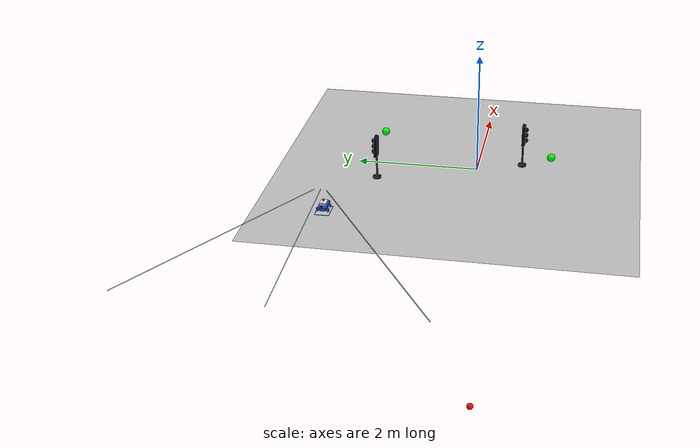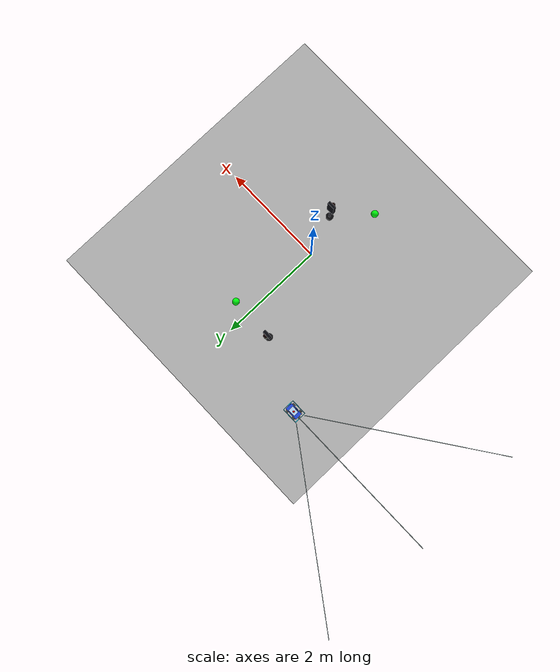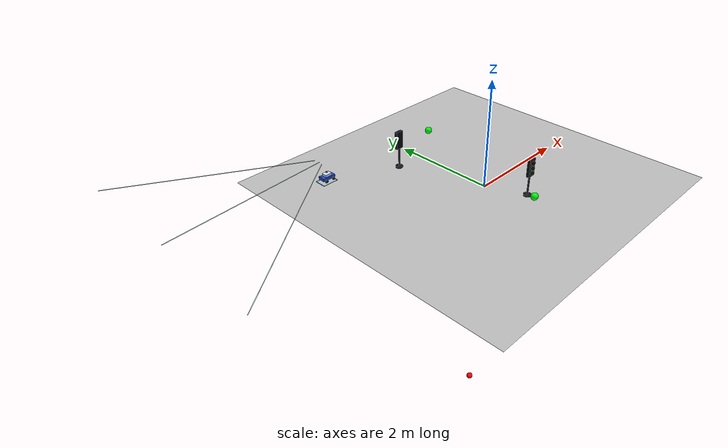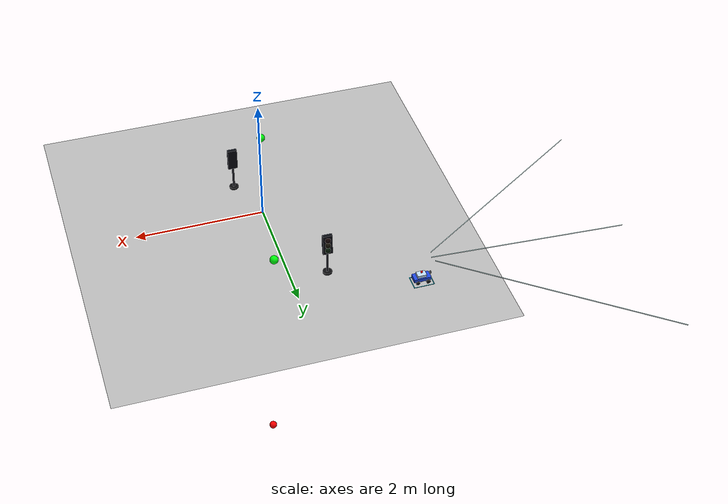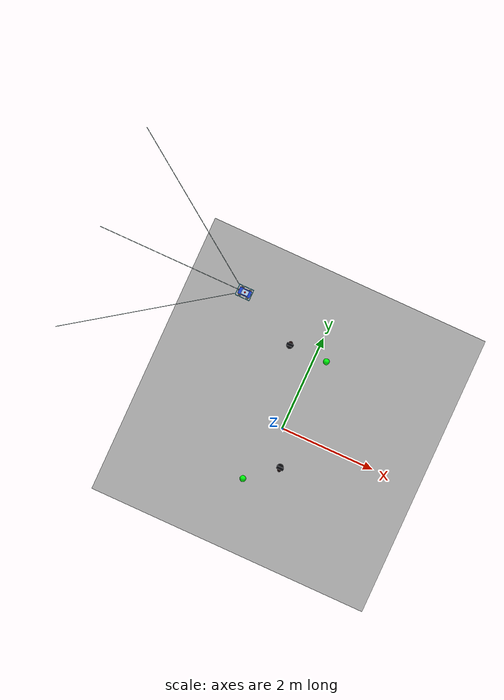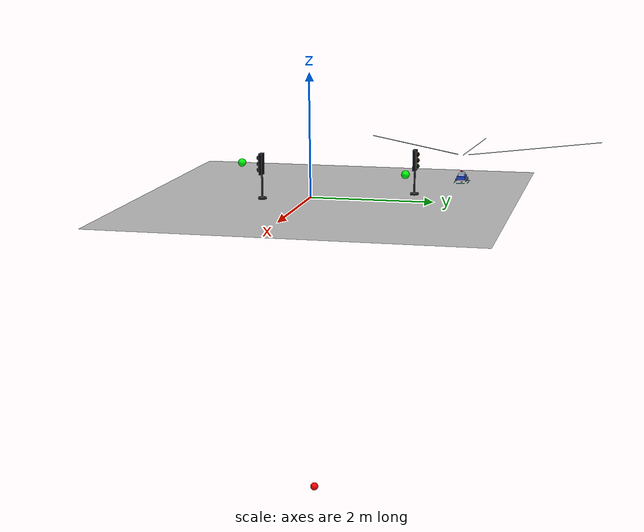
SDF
<?xml version='1.0' encoding='utf-8'?>
<sdf version="1.7">
  <world name="autonomous_map_3d_world">
    <plugin name="gazebo_ros_state" filename="libgazebo_ros_state.so">
      <update_rate>50.0</update_rate>
    </plugin>
    <scene>
      <ambient>0.82 0.82 0.82 1</ambient>
      <background>0.86 0.91 0.98 1</background>
      <shadows>0</shadows>
    </scene>
    <light name="sun" type="directional">
      <cast_shadows>1</cast_shadows>
      <pose>0 0 10 0 -0 0</pose>
      <diffuse>0.8 0.8 0.8 1</diffuse>
      <specular>0.2 0.2 0.2 1</specular>
      <attenuation>
        <range>1000</range>
        <constant>0.9</constant>
        <linear>0.01</linear>
        <quadratic>0.001</quadratic>
      </attenuation>
      <direction>-0.5 0.1 -0.9</direction>
      <spot>
        <inner_angle>0</inner_angle>
        <outer_angle>0</outer_angle>
        <falloff>0</falloff>
      </spot>
    </light>
    <light name="key_light" type="directional">
      <cast_shadows>0</cast_shadows>
      <pose>0 0 6 0 -0 0</pose>
      <diffuse>0.92 0.92 0.9 1</diffuse>
      <specular>0.15 0.15 0.15 1</specular>
      <direction>-0.3 0.35 -1</direction>
      <attenuation>
        <range>10</range>
      </attenuation>
      <spot>
        <inner_angle>0</inner_angle>
        <outer_angle>0</outer_angle>
        <falloff>0</falloff>
      </spot>
    </light>
    <light name="fill_light" type="directional">
      <cast_shadows>0</cast_shadows>
      <pose>0 0 6 0 -0 0</pose>
      <diffuse>0.42 0.46 0.52 1</diffuse>
      <specular>0.05 0.05 0.05 1</specular>
      <direction>0.3 -0.2 -1</direction>
      <attenuation>
        <range>10</range>
      </attenuation>
      <spot>
        <inner_angle>0</inner_angle>
        <outer_angle>0</outer_angle>
        <falloff>0</falloff>
      </spot>
    </light>
    <model name="autonomous_map_3d">
      <static>1</static>
      <link name="map_link">
        <visual name="textured_map_visual">
          <geometry>
            <mesh>
              <uri>model://autonomous_map_3d/meshes/autonomous_map_3d.dae</uri>
            </mesh>
          </geometry>
        </visual>
        <collision name="floor_collision">
          <pose>0 0 -0.01 0 -0 0</pose>
          <geometry>
            <box>
              <size>6 6 0.02</size>
            </box>
          </geometry>
          <max_contacts>10</max_contacts>
          <surface>
            <contact>
              <ode />
            </contact>
            <bounce />
            <friction>
              <torsional>
                <ode />
              </torsional>
              <ode />
            </friction>
          </surface>
        </collision>
        <self_collide>0</self_collide>
        <enable_wind>0</enable_wind>
        <kinematic>0</kinematic>
      </link>
      <pose>0 0.3 0 0 -0 0</pose>
    </model>
    <model name="traffic_light_top_island">
      <static>1</static>
      <link name="traffic_light_link">
        <visual name="base_visual">
          <pose>0 0 0.015 0 -0 0</pose>
          <geometry>
            <cylinder>
              <radius>0.07</radius>
              <length>0.03</length>
            </cylinder>
          </geometry>
          <material>
            <ambient>0.03 0.03 0.04 1</ambient>
            <diffuse>0.04 0.04 0.05 1</diffuse>
          </material>
        </visual>
        <visual name="pole_visual">
          <pose>0 0 0.25 0 -0 0</pose>
          <geometry>
            <cylinder>
              <radius>0.016</radius>
              <length>0.47</length>
            </cylinder>
          </geometry>
          <material>
            <ambient>0.08 0.08 0.1 1</ambient>
            <diffuse>0.1 0.1 0.13 1</diffuse>
          </material>
        </visual>
        <visual name="housing_visual">
          <pose>0 -0.006 0.565 0 -0 0</pose>
          <geometry>
            <box>
              <size>0.145 0.055 0.34</size>
            </box>
          </geometry>
          <material>
            <ambient>0.02 0.025 0.04 1</ambient>
            <diffuse>0.03 0.035 0.06 1</diffuse>
          </material>
        </visual>
        <visual name="red_lens_visual">
          <pose>0 -0.038 0.66 0 -0 0</pose>
          <geometry>
            <sphere>
              <radius>0.043</radius>
            </sphere>
          </geometry>
          <material>
            <ambient>0.035 0.002 0.002 1</ambient>
            <diffuse>0.06 0.004 0.004 1</diffuse>
            <emissive>0 0 0 1</emissive>
          </material>
        </visual>
        <visual name="yellow_lens_visual">
          <pose>0 -0.038 0.565 0 -0 0</pose>
          <geometry>
            <sphere>
              <radius>0.043</radius>
            </sphere>
          </geometry>
          <material>
            <ambient>0.035 0.025 0.002 1</ambient>
            <diffuse>0.06 0.045 0.004 1</diffuse>
            <emissive>0 0 0 1</emissive>
          </material>
        </visual>
        <visual name="green_lens_visual">
          <pose>0 -0.038 0.47 0 -0 0</pose>
          <geometry>
            <sphere>
              <radius>0.043</radius>
            </sphere>
          </geometry>
          <material>
            <ambient>0.002 0.04 0.004 1</ambient>
            <diffuse>0.004 0.078 0.01 1</diffuse>
            <emissive>0 0 0 1</emissive>
          </material>
        </visual>
        <self_collide>0</self_collide>
        <enable_wind>0</enable_wind>
        <kinematic>0</kinematic>
      </link>
      <pose>-0.5625 1.5891 0 0 -0 -3.14159</pose>
    </model>
    <model name="traffic_light_lower_island">
      <static>1</static>
      <link name="traffic_light_link">
        <visual name="base_visual">
          <pose>0 0 0.015 0 -0 0</pose>
          <geometry>
            <cylinder>
              <radius>0.07</radius>
              <length>0.03</length>
            </cylinder>
          </geometry>
          <material>
            <ambient>0.03 0.03 0.04 1</ambient>
            <diffuse>0.04 0.04 0.05 1</diffuse>
          </material>
        </visual>
        <visual name="pole_visual">
          <pose>0 0 0.25 0 -0 0</pose>
          <geometry>
            <cylinder>
              <radius>0.016</radius>
              <length>0.47</length>
            </cylinder>
          </geometry>
          <material>
            <ambient>0.08 0.08 0.1 1</ambient>
            <diffuse>0.1 0.1 0.13 1</diffuse>
          </material>
        </visual>
        <visual name="housing_visual">
          <pose>0 -0.006 0.565 0 -0 0</pose>
          <geometry>
            <box>
              <size>0.145 0.055 0.34</size>
            </box>
          </geometry>
          <material>
            <ambient>0.02 0.025 0.04 1</ambient>
            <diffuse>0.03 0.035 0.06 1</diffuse>
          </material>
        </visual>
        <visual name="red_lens_visual">
          <pose>0 -0.038 0.66 0 -0 0</pose>
          <geometry>
            <sphere>
              <radius>0.043</radius>
            </sphere>
          </geometry>
          <material>
            <ambient>0.035 0.002 0.002 1</ambient>
            <diffuse>0.06 0.004 0.004 1</diffuse>
            <emissive>0 0 0 1</emissive>
          </material>
        </visual>
        <visual name="yellow_lens_visual">
          <pose>0 -0.038 0.565 0 -0 0</pose>
          <geometry>
            <sphere>
              <radius>0.043</radius>
            </sphere>
          </geometry>
          <material>
            <ambient>0.035 0.025 0.002 1</ambient>
            <diffuse>0.06 0.045 0.004 1</diffuse>
            <emissive>0 0 0 1</emissive>
          </material>
        </visual>
        <visual name="green_lens_visual">
          <pose>0 -0.038 0.47 0 -0 0</pose>
          <geometry>
            <sphere>
              <radius>0.043</radius>
            </sphere>
          </geometry>
          <material>
            <ambient>0.002 0.04 0.004 1</ambient>
            <diffuse>0.004 0.078 0.01 1</diffuse>
            <emissive>0 0 0 1</emissive>
          </material>
        </visual>
        <self_collide>0</self_collide>
        <enable_wind>0</enable_wind>
        <kinematic>0</kinematic>
      </link>
      <pose>0.2812 -0.7312 0 0 -0 0</pose>
    </model>
    <model name="traffic_light_top_island_red_active_lamp">
      <static>0</static>
      <link name="lamp_link">
        <gravity>0</gravity>
        <visual name="lamp_visual">
          <geometry>
            <sphere>
              <radius>0.065</radius>
            </sphere>
          </geometry>
          <material>
            <ambient>1 0 0 1</ambient>
            <diffuse>1 0 0 1</diffuse>
            <emissive>0.0313726 0 0 1</emissive>
          </material>
        </visual>
        <self_collide>0</self_collide>
        <enable_wind>0</enable_wind>
        <kinematic>1</kinematic>
        <inertial>
          <pose>0 0 0 0 -0 0</pose>
          <inertia>
            <ixx>1</ixx>
            <ixy>0</ixy>
            <ixz>0</ixz>
            <iyy>1</iyy>
            <iyz>0</iyz>
            <izz>1</izz>
          </inertia>
          <mass>1</mass>
        </inertial>
      </link>
      <pose>0 0 -5 0 -0 0</pose>
    </model>
    <model name="traffic_light_top_island_yellow_active_lamp">
      <static>0</static>
      <link name="lamp_link">
        <gravity>0</gravity>
        <visual name="lamp_visual">
          <geometry>
            <sphere>
              <radius>0.065</radius>
            </sphere>
          </geometry>
          <material>
            <ambient>1 0.72 0 1</ambient>
            <diffuse>1 0.72 0 1</diffuse>
            <emissive>0.0313726 0.0203922 0 1</emissive>
          </material>
        </visual>
        <self_collide>0</self_collide>
        <enable_wind>0</enable_wind>
        <kinematic>1</kinematic>
        <inertial>
          <pose>0 0 0 0 -0 0</pose>
          <inertia>
            <ixx>1</ixx>
            <ixy>0</ixy>
            <ixz>0</ixz>
            <iyy>1</iyy>
            <iyz>0</iyz>
            <izz>1</izz>
          </inertia>
          <mass>1</mass>
        </inertial>
      </link>
      <pose>0 0 -5 0 -0 0</pose>
    </model>
    <model name="traffic_light_top_island_green_active_lamp">
      <static>0</static>
      <link name="lamp_link">
        <gravity>0</gravity>
        <visual name="lamp_visual">
          <geometry>
            <sphere>
              <radius>0.065</radius>
            </sphere>
          </geometry>
          <material>
            <ambient>0 1 0.05 1</ambient>
            <diffuse>0 1 0.05 1</diffuse>
            <emissive>0 0.0313726 0.3 1</emissive>
          </material>
        </visual>
        <self_collide>0</self_collide>
        <enable_wind>0</enable_wind>
        <kinematic>1</kinematic>
        <inertial>
          <pose>0 0 0 0 -0 0</pose>
          <inertia>
            <ixx>1</ixx>
            <ixy>0</ixy>
            <ixz>0</ixz>
            <iyy>1</iyy>
            <iyz>0</iyz>
            <izz>1</izz>
          </inertia>
          <mass>1</mass>
        </inertial>
      </link>
      <pose>0.2414 1.5897 0.47 0 -0 0</pose>
    </model>
    <model name="traffic_light_lower_island_red_active_lamp">
      <static>0</static>
      <link name="lamp_link">
        <gravity>0</gravity>
        <visual name="lamp_visual">
          <geometry>
            <sphere>
              <radius>0.065</radius>
            </sphere>
          </geometry>
          <material>
            <ambient>1 0 0 1</ambient>
            <diffuse>1 0 0 1</diffuse>
            <emissive>0.0313726 0 0 1</emissive>
          </material>
        </visual>
        <self_collide>0</self_collide>
        <enable_wind>0</enable_wind>
        <kinematic>1</kinematic>
        <inertial>
          <pose>0 0 0 0 -0 0</pose>
          <inertia>
            <ixx>1</ixx>
            <ixy>0</ixy>
            <ixz>0</ixz>
            <iyy>1</iyy>
            <iyz>0</iyz>
            <izz>1</izz>
          </inertia>
          <mass>1</mass>
        </inertial>
      </link>
      <pose>0 0 -5 0 -0 0</pose>
    </model>
    <model name="traffic_light_lower_island_yellow_active_lamp">
      <static>0</static>
      <link name="lamp_link">
        <gravity>0</gravity>
        <visual name="lamp_visual">
          <geometry>
            <sphere>
              <radius>0.065</radius>
            </sphere>
          </geometry>
          <material>
            <ambient>1 0.72 0 1</ambient>
            <diffuse>1 0.72 0 1</diffuse>
            <emissive>0.0313726 0.0203922 0 1</emissive>
          </material>
        </visual>
        <self_collide>0</self_collide>
        <enable_wind>0</enable_wind>
        <kinematic>1</kinematic>
        <inertial>
          <pose>0 0 0 0 -0 0</pose>
          <inertia>
            <ixx>1</ixx>
            <ixy>0</ixy>
            <ixz>0</ixz>
            <iyy>1</iyy>
            <iyz>0</iyz>
            <izz>1</izz>
          </inertia>
          <mass>1</mass>
        </inertial>
      </link>
      <pose>0 0 -5 0 -0 0</pose>
    </model>
    <model name="traffic_light_lower_island_green_active_lamp">
      <static>0</static>
      <link name="lamp_link">
        <gravity>0</gravity>
        <visual name="lamp_visual">
          <geometry>
            <sphere>
              <radius>0.065</radius>
            </sphere>
          </geometry>
          <material>
            <ambient>0 1 0.05 1</ambient>
            <diffuse>0 1 0.05 1</diffuse>
            <emissive>0 0.0313726 0.3 1</emissive>
          </material>
        </visual>
        <self_collide>0</self_collide>
        <enable_wind>0</enable_wind>
        <kinematic>1</kinematic>
        <inertial>
          <pose>0 0 0 0 -0 0</pose>
          <inertia>
            <ixx>1</ixx>
            <ixy>0</ixy>
            <ixz>0</ixz>
            <iyy>1</iyy>
            <iyz>0</iyz>
            <izz>1</izz>
          </inertia>
          <mass>1</mass>
        </inertial>
      </link>
      <pose>-0.3082 -1.2375 0.47 0 -0 0</pose>
    </model>
    <model name="track_preview_car">
      <static>0</static>
      <self_collide>0</self_collide>
      <allow_auto_disable>0</allow_auto_disable>
      <link name="body">
        <gravity>1</gravity>
        <inertial>
          <mass>1</mass>
          <inertia>
            <ixx>0.01</ixx>
            <iyy>0.01</iyy>
            <izz>0.01</izz>
            <ixy>0</ixy>
            <ixz>0</ixz>
            <iyz>0</iyz>
          </inertia>
          <pose>0 0 0 0 -0 0</pose>
        </inertial>
        <visual name="chassis_visual">
          <pose>0 0 0.065 0 -0 0</pose>
          <geometry>
            <box>
              <size>0.26 0.14 0.055</size>
            </box>
          </geometry>
          <material>
            <ambient>0.08 0.2 0.7 1</ambient>
            <diffuse>0.12 0.28 0.88 1</diffuse>
            <specular>0.1 0.1 0.1 1</specular>
          </material>
        </visual>
        <visual name="roof_visual">
          <pose>-0.005 0 0.115 0 -0 0</pose>
          <geometry>
            <box>
              <size>0.14 0.105 0.045</size>
            </box>
          </geometry>
          <material>
            <ambient>0.65 0.78 0.95 0.92</ambient>
            <diffuse>0.75 0.86 0.98 0.92</diffuse>
            <specular>0.1 0.1 0.1 1</specular>
          </material>
        </visual>
        <visual name="front_marker_visual">
          <pose>0.105 0 0.083 0 -0 0</pose>
          <geometry>
            <box>
              <size>0.025 0.075 0.018</size>
            </box>
          </geometry>
          <material>
            <ambient>1 0.85 0.2 1</ambient>
            <diffuse>1 0.88 0.25 1</diffuse>
            <specular>0.05 0.05 0.05 1</specular>
          </material>
        </visual>
        <visual name="camera_lens_visual">
          <pose>0.138 0 0.126 0 -0 0</pose>
          <geometry>
            <box>
              <size>0.016 0.04 0.022</size>
            </box>
          </geometry>
          <material>
            <ambient>0.02 0.02 0.025 1</ambient>
            <diffuse>0.04 0.04 0.05 1</diffuse>
            <specular>0.05 0.05 0.05 1</specular>
          </material>
        </visual>
        <visual name="camera_view_left_ray_visual">
          <pose>1.67 1.15 0.335 -0 0.0505 0.6109</pose>
          <geometry>
            <box>
              <size>3.68 0.008 0.008</size>
            </box>
          </geometry>
          <material>
            <ambient>0.85 1 1 0.82</ambient>
            <diffuse>0.85 1 1 0.82</diffuse>
            <emissive>0.2 0.55 0.75 1</emissive>
          </material>
        </visual>
        <visual name="camera_view_center_ray_visual">
          <pose>1.67 0 0.335 0 0.0555 0</pose>
          <geometry>
            <box>
              <size>3.0647 0.008 0.008</size>
            </box>
          </geometry>
          <material>
            <ambient>0.85 1 1 0.82</ambient>
            <diffuse>0.85 1 1 0.82</diffuse>
            <emissive>0.2 0.55 0.75 1</emissive>
          </material>
        </visual>
        <visual name="camera_view_right_ray_visual">
          <pose>1.67 -1.15 0.335 0 0.0505 -0.6109</pose>
          <geometry>
            <box>
              <size>3.68 0.008 0.008</size>
            </box>
          </geometry>
          <material>
            <ambient>0.85 1 1 0.82</ambient>
            <diffuse>0.85 1 1 0.82</diffuse>
            <emissive>0.2 0.55 0.75 1</emissive>
          </material>
        </visual>
        <visual name="debug_origin_marker_visual">
          <pose>0 0 0.165 0 -0 0</pose>
          <geometry>
            <sphere>
              <radius>0.018</radius>
            </sphere>
          </geometry>
          <material>
            <ambient>1 0.02 0.02 1</ambient>
            <diffuse>1 0.04 0.04 1</diffuse>
            <specular>0.08 0.08 0.08 1</specular>
          </material>
        </visual>
        <visual name="debug_ground_origin_visual">
          <pose>0 0 -0.017 0 -0 0</pose>
          <geometry>
            <cylinder>
              <radius>0.018</radius>
              <length>0.004</length>
            </cylinder>
          </geometry>
          <material>
            <ambient>1 0.02 0.02 1</ambient>
            <diffuse>1 0.04 0.04 1</diffuse>
            <specular>0.08 0.08 0.08 1</specular>
          </material>
        </visual>
        <visual name="debug_ground_footprint_front_visual">
          <pose>0.165 0 -0.017 0 -0 0</pose>
          <geometry>
            <box>
              <size>0.008 0.238 0.004</size>
            </box>
          </geometry>
          <material>
            <ambient>0 0.7 1 1</ambient>
            <diffuse>0.05 0.86 1 1</diffuse>
            <specular>0.02 0.02 0.02 1</specular>
          </material>
        </visual>
        <visual name="debug_ground_footprint_rear_visual">
          <pose>-0.145 0 -0.017 0 -0 0</pose>
          <geometry>
            <box>
              <size>0.008 0.238 0.004</size>
            </box>
          </geometry>
          <material>
            <ambient>0 0.7 1 1</ambient>
            <diffuse>0.05 0.86 1 1</diffuse>
            <specular>0.02 0.02 0.02 1</specular>
          </material>
        </visual>
        <visual name="debug_ground_footprint_left_visual">
          <pose>0.01 0.115 -0.017 0 -0 0</pose>
          <geometry>
            <box>
              <size>0.318 0.008 0.004</size>
            </box>
          </geometry>
          <material>
            <ambient>0 0.7 1 1</ambient>
            <diffuse>0.05 0.86 1 1</diffuse>
            <specular>0.02 0.02 0.02 1</specular>
          </material>
        </visual>
        <visual name="debug_ground_footprint_right_visual">
          <pose>0.01 -0.115 -0.017 0 -0 0</pose>
          <geometry>
            <box>
              <size>0.318 0.008 0.004</size>
            </box>
          </geometry>
          <material>
            <ambient>0 0.7 1 1</ambient>
            <diffuse>0.05 0.86 1 1</diffuse>
            <specular>0.02 0.02 0.02 1</specular>
          </material>
        </visual>
        <visual name="rear_left_dummy_wheel_visual">
          <pose>-0.08 0.085 0.032 1.5708 -0 0</pose>
          <geometry>
            <cylinder>
              <radius>0.028</radius>
              <length>0.016</length>
            </cylinder>
          </geometry>
          <material>
            <ambient>0.03 0.03 0.03 1</ambient>
            <diffuse>0.07 0.07 0.07 1</diffuse>
            <specular>0.02 0.02 0.02 1</specular>
          </material>
        </visual>
        <visual name="rear_right_dummy_wheel_visual">
          <pose>-0.08 -0.085 0.032 1.5708 -0 0</pose>
          <geometry>
            <cylinder>
              <radius>0.028</radius>
              <length>0.016</length>
            </cylinder>
          </geometry>
          <material>
            <ambient>0.03 0.03 0.03 1</ambient>
            <diffuse>0.07 0.07 0.07 1</diffuse>
            <specular>0.02 0.02 0.02 1</specular>
          </material>
        </visual>
        <collision name="rear_left_caster_collision">
          <pose>-0.095 0.072 0.026 0 -0 0</pose>
          <geometry>
            <sphere>
              <radius>0.024</radius>
            </sphere>
          </geometry>
          <surface>
            <friction>
              <ode>
                <mu>0.05</mu>
                <mu2>0.05</mu2>
              </ode>
              <torsional>
                <ode />
              </torsional>
            </friction>
            <contact>
              <ode />
            </contact>
            <bounce />
          </surface>
          <max_contacts>10</max_contacts>
        </collision>
        <collision name="rear_right_caster_collision">
          <pose>-0.095 -0.072 0.026 0 -0 0</pose>
          <geometry>
            <sphere>
              <radius>0.024</radius>
            </sphere>
          </geometry>
          <surface>
            <friction>
              <ode>
                <mu>0.05</mu>
                <mu2>0.05</mu2>
              </ode>
              <torsional>
                <ode />
              </torsional>
            </friction>
            <contact>
              <ode />
            </contact>
            <bounce />
          </surface>
          <max_contacts>10</max_contacts>
        </collision>
        <collision name="body_collision">
          <pose>0 0 0.065 0 -0 0</pose>
          <geometry>
            <box>
              <size>0.26 0.14 0.05</size>
            </box>
          </geometry>
          <max_contacts>10</max_contacts>
          <surface>
            <contact>
              <ode />
            </contact>
            <bounce />
            <friction>
              <torsional>
                <ode />
              </torsional>
              <ode />
            </friction>
          </surface>
        </collision>
        <sensor name="front_camera" type="camera">
          <pose>0.14 0 0.42 0 0.18 0</pose>
          <always_on>1</always_on>
          <update_rate>30</update_rate>
          <visualize>0</visualize>
          <camera>
            <horizontal_fov>2.45</horizontal_fov>
            <image>
              <width>960</width>
              <height>540</height>
              <format>R8G8B8</format>
            </image>
            <clip>
              <near>0.02</near>
              <far>6</far>
            </clip>
          </camera>
          <plugin name="front_camera_controller" filename="libgazebo_ros_camera.so">
            <ros>
              <namespace>/track_preview_car</namespace>
              <remapping>image_raw:=image_raw</remapping>
              <remapping>camera_info:=camera_info</remapping>
            </ros>
            <camera_name>camera</camera_name>
            <frame_name>track_preview_car/front_camera</frame_name>
          </plugin>
        </sensor>
        <self_collide>0</self_collide>
        <enable_wind>0</enable_wind>
        <kinematic>0</kinematic>
      </link>
      <link name="left_wheel">
        <gravity>1</gravity>
        <pose>0.08 0.088 0.032 0 -0 0</pose>
        <inertial>
          <mass>0.08</mass>
          <inertia>
            <ixx>5e-05</ixx>
            <iyy>8e-05</iyy>
            <izz>5e-05</izz>
            <ixy>0</ixy>
            <ixz>0</ixz>
            <iyz>0</iyz>
          </inertia>
          <pose>0 0 0 0 -0 0</pose>
        </inertial>
        <visual name="left_wheel_visual">
          <pose>0 0 0 1.5708 -0 0</pose>
          <geometry>
            <cylinder>
              <radius>0.03</radius>
              <length>0.02</length>
            </cylinder>
          </geometry>
          <material>
            <ambient>0.03 0.03 0.03 1</ambient>
            <diffuse>0.07 0.07 0.07 1</diffuse>
            <specular>0.02 0.02 0.02 1</specular>
          </material>
        </visual>
        <collision name="left_wheel_collision">
          <pose>0 0 0 1.5708 -0 0</pose>
          <geometry>
            <cylinder>
              <radius>0.03</radius>
              <length>0.02</length>
            </cylinder>
          </geometry>
          <surface>
            <friction>
              <ode>
                <mu>1.2</mu>
                <mu2>1.2</mu2>
              </ode>
              <torsional>
                <ode />
              </torsional>
            </friction>
            <contact>
              <ode />
            </contact>
            <bounce />
          </surface>
          <max_contacts>10</max_contacts>
        </collision>
        <self_collide>0</self_collide>
        <enable_wind>0</enable_wind>
        <kinematic>0</kinematic>
      </link>
      <link name="right_wheel">
        <gravity>1</gravity>
        <pose>0.08 -0.088 0.032 0 -0 0</pose>
        <inertial>
          <mass>0.08</mass>
          <inertia>
            <ixx>5e-05</ixx>
            <iyy>8e-05</iyy>
            <izz>5e-05</izz>
            <ixy>0</ixy>
            <ixz>0</ixz>
            <iyz>0</iyz>
          </inertia>
          <pose>0 0 0 0 -0 0</pose>
        </inertial>
        <visual name="right_wheel_visual">
          <pose>0 0 0 1.5708 -0 0</pose>
          <geometry>
            <cylinder>
              <radius>0.03</radius>
              <length>0.02</length>
            </cylinder>
          </geometry>
          <material>
            <ambient>0.03 0.03 0.03 1</ambient>
            <diffuse>0.07 0.07 0.07 1</diffuse>
            <specular>0.02 0.02 0.02 1</specular>
          </material>
        </visual>
        <collision name="right_wheel_collision">
          <pose>0 0 0 1.5708 -0 0</pose>
          <geometry>
            <cylinder>
              <radius>0.03</radius>
              <length>0.02</length>
            </cylinder>
          </geometry>
          <surface>
            <friction>
              <ode>
                <mu>1.2</mu>
                <mu2>1.2</mu2>
              </ode>
              <torsional>
                <ode />
              </torsional>
            </friction>
            <contact>
              <ode />
            </contact>
            <bounce />
          </surface>
          <max_contacts>10</max_contacts>
        </collision>
        <self_collide>0</self_collide>
        <enable_wind>0</enable_wind>
        <kinematic>0</kinematic>
      </link>
      <joint name="left_wheel_joint" type="revolute">
        <parent>body</parent>
        <child>left_wheel</child>
        <axis>
          <xyz>0 1 0</xyz>
          <limit>
            <lower>-1e+16</lower>
            <upper>1e+16</upper>
          </limit>
          <dynamics>
            <spring_reference>0</spring_reference>
            <spring_stiffness>0</spring_stiffness>
          </dynamics>
        </axis>
      </joint>
      <joint name="right_wheel_joint" type="revolute">
        <parent>body</parent>
        <child>right_wheel</child>
        <axis>
          <xyz>0 1 0</xyz>
          <limit>
            <lower>-1e+16</lower>
            <upper>1e+16</upper>
          </limit>
          <dynamics>
            <spring_reference>0</spring_reference>
            <spring_stiffness>0</spring_stiffness>
          </dynamics>
        </axis>
      </joint>
      <plugin name="track_preview_car_diff_drive" filename="libgazebo_ros_diff_drive.so">
        <ros>
          <namespace>/track_preview_car</namespace>
          <remapping>cmd_vel:=cmd_vel</remapping>
          <remapping>odom:=odom</remapping>
        </ros>
        <left_joint>left_wheel_joint</left_joint>
        <right_joint>right_wheel_joint</right_joint>
        <wheel_separation>0.176</wheel_separation>
        <wheel_diameter>0.06</wheel_diameter>
        <max_wheel_torque>2.0</max_wheel_torque>
        <max_wheel_acceleration>8.0</max_wheel_acceleration>
        <odometry_frame>odom</odometry_frame>
        <robot_base_frame>body</robot_base_frame>
        <publish_odom>1</publish_odom>
        <publish_odom_tf>0</publish_odom_tf>
        <publish_wheel_tf>0</publish_wheel_tf>
        <update_rate>50</update_rate>
      </plugin>
      <pose>-1.828125 2.179688 0.020000 0.000000 0.000000 3.141593</pose>
    </model>
    <physics name="default_physics" default="1" type="ode">
      <max_step_size>0.001</max_step_size>
      <real_time_update_rate>1000</real_time_update_rate>
      <real_time_factor>1</real_time_factor>
    </physics>
    <gui fullscreen="0">
      <camera name="user_camera">
        <pose>1.36582 5.7559 5.72311 0 0.714092 -1.72161</pose>
        <view_controller>orbit</view_controller>
        <projection_type>perspective</projection_type>
      </camera>
    </gui>
    <gravity>0 0 -9.8</gravity>
    <magnetic_field>6e-06 2.3e-05 -4.2e-05</magnetic_field>
    <atmosphere type="adiabatic" />
    <wind />
    <spherical_coordinates>
      <surface_model>EARTH_WGS84</surface_model>
      <latitude_deg>0</latitude_deg>
      <longitude_deg>0</longitude_deg>
      <elevation>0</elevation>
      <heading_deg>0</heading_deg>
    </spherical_coordinates>
  </world>
</sdf>
